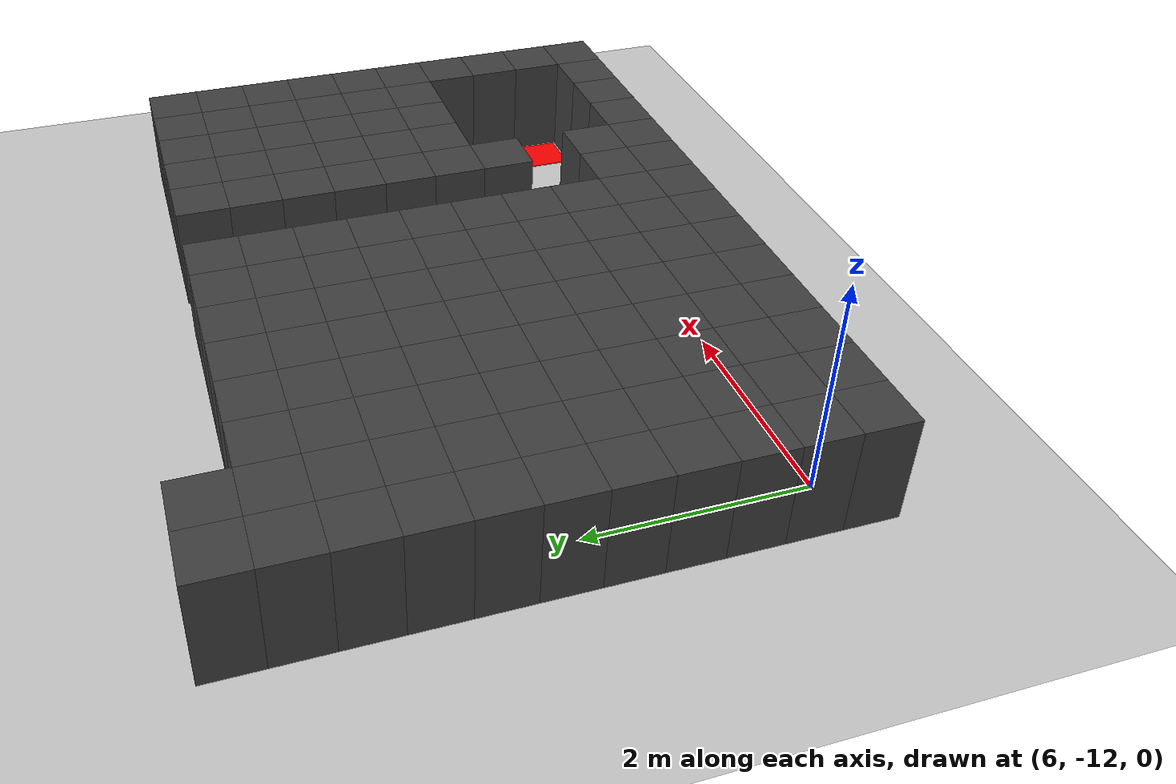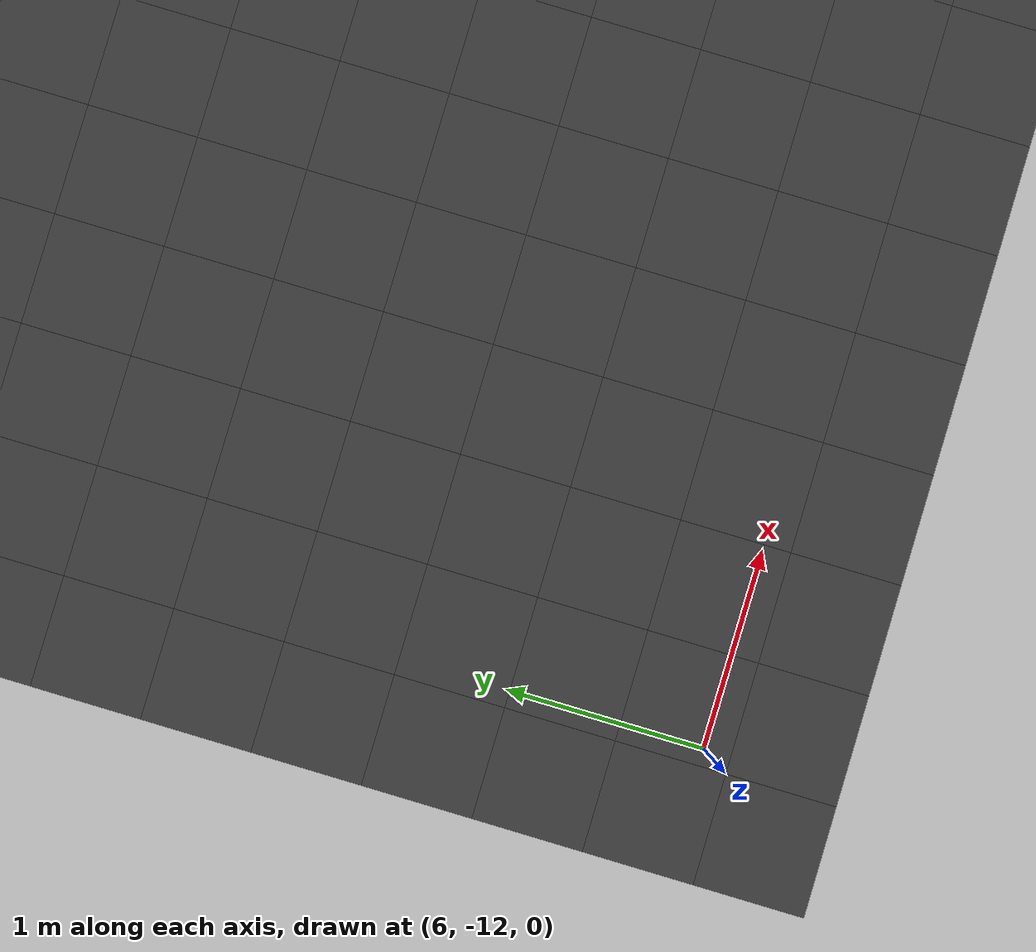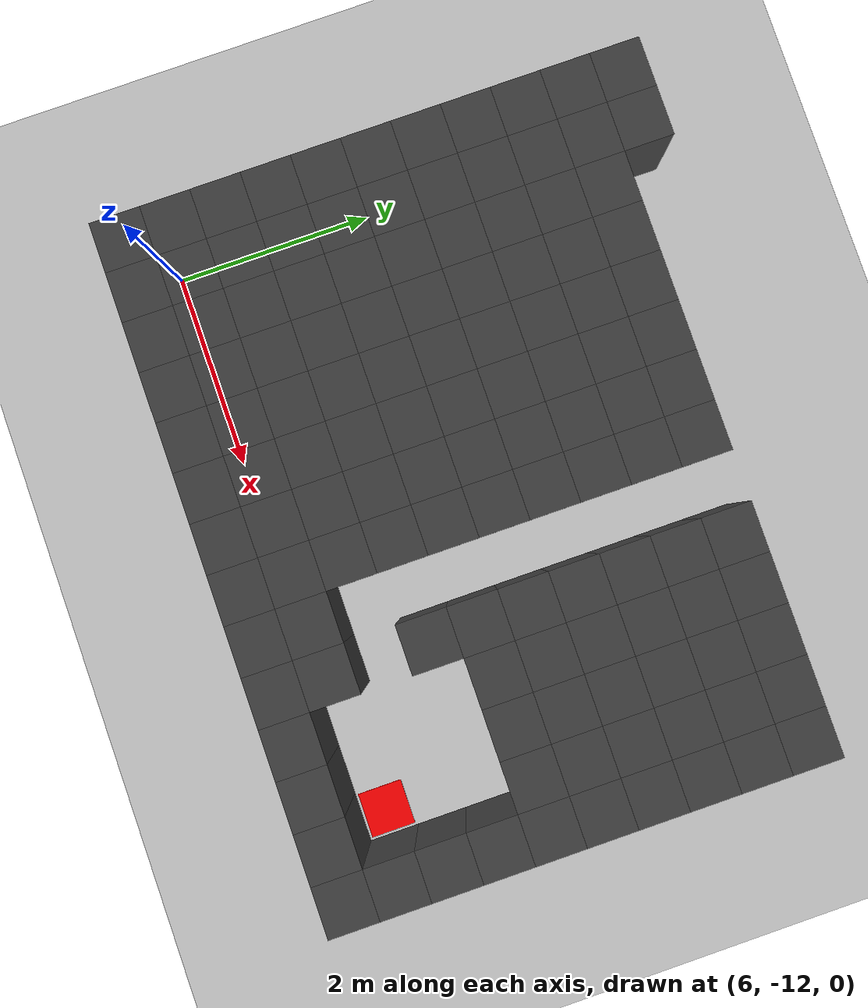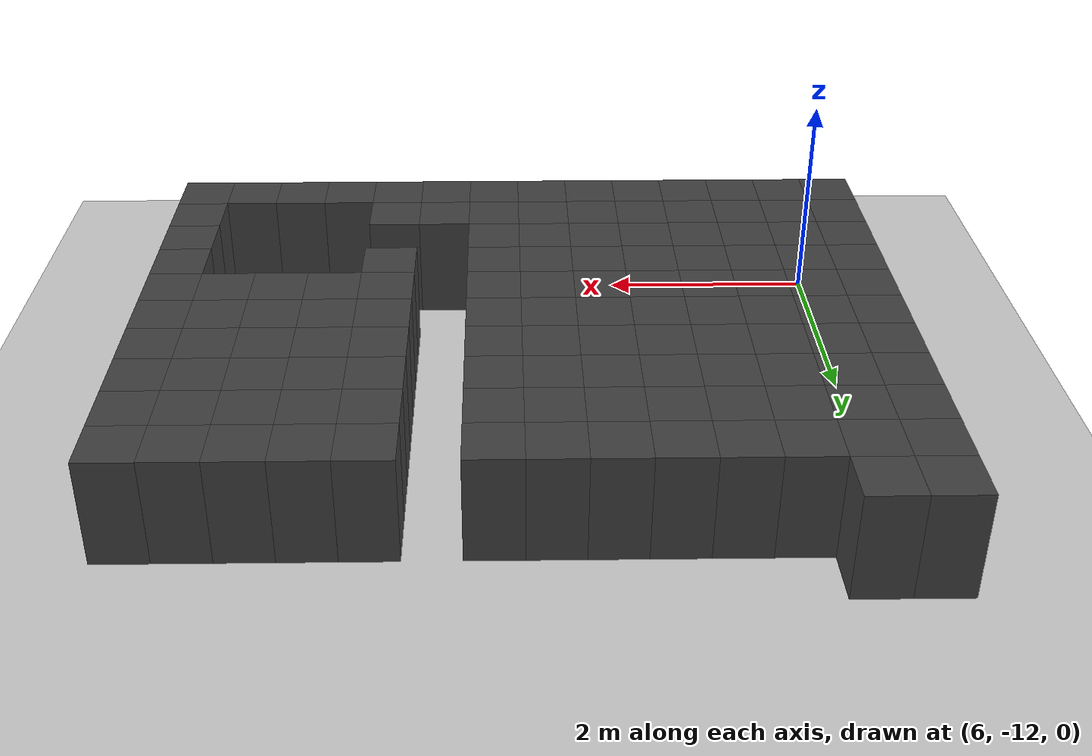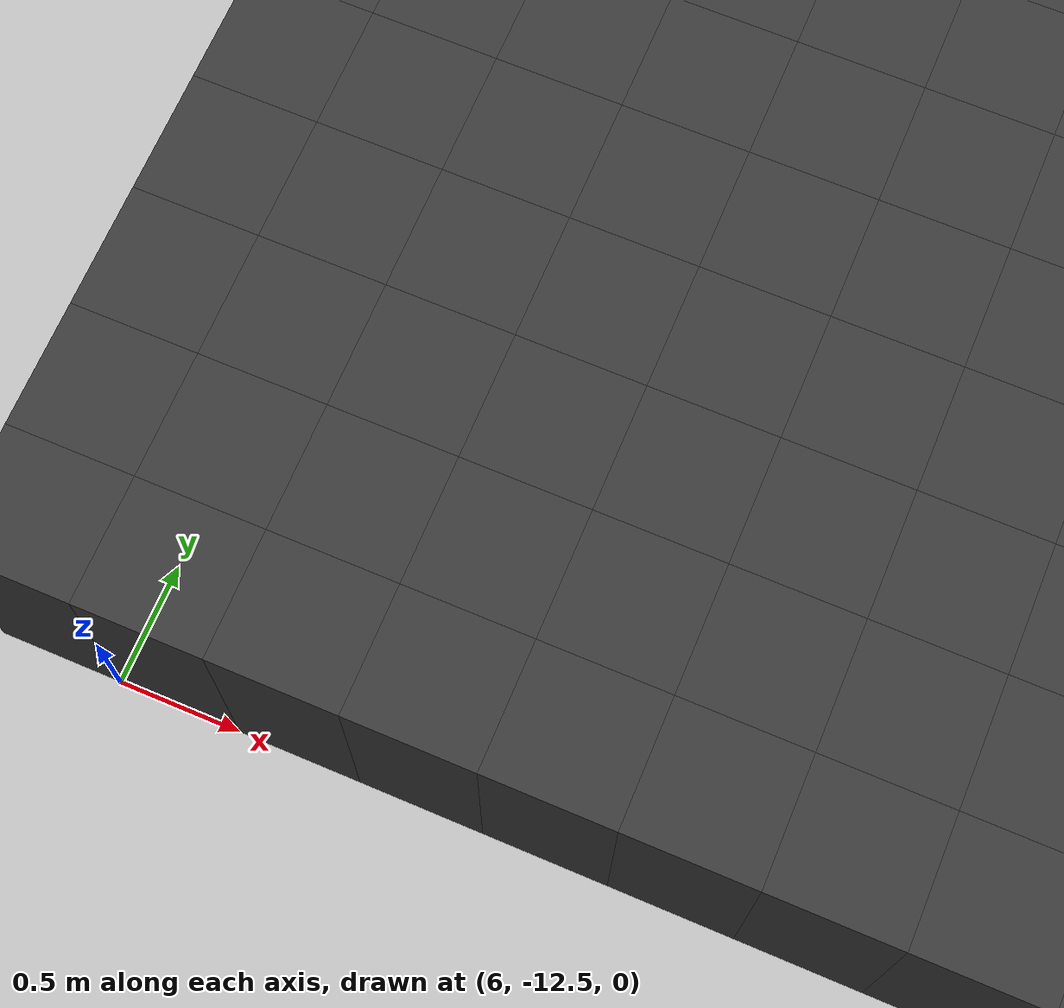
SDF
<sdf version="1.7">
 <world name="map_10764">
  <model name="ground_plane">
   <static>true</static>
   <link name="link">
    <collision name="collision">
     <geometry><plane><normal>0 0 1</normal><size>200 200</size></plane></geometry>
    </collision>
    <visual name="visual">
     <geometry><plane><normal>0 0 1</normal><size>200 200</size></plane></geometry>
     <material><ambient>0.8 0.8 0.8 1</ambient><diffuse>0.8 0.8 0.8 1</diffuse></material>
    </visual>
   </link>
  </model>
  <model name="maze_environment">
   <static>true</static>
   <link name="wall_1635">
    <pose>5.750 -7.250 0.500 0 0 0</pose>
    <collision name="col"><geometry><box><size>0.5 0.5 1.0</size></box></geometry></collision>
    <visual name="vis">
     <geometry><box><size>0.5 0.5 1.0</size></box></geometry>
     <material><ambient>0.15 0.15 0.15 1</ambient><diffuse>0.25 0.25 0.25 1</diffuse></material>
    </visual>
   </link>
   <link name="wall_1636">
    <pose>6.250 -7.250 0.500 0 0 0</pose>
    <collision name="col"><geometry><box><size>0.5 0.5 1.0</size></box></geometry></collision>
    <visual name="vis">
     <geometry><box><size>0.5 0.5 1.0</size></box></geometry>
     <material><ambient>0.15 0.15 0.15 1</ambient><diffuse>0.25 0.25 0.25 1</diffuse></material>
    </visual>
   </link>
   <link name="wall_1684">
    <pose>5.750 -7.750 0.500 0 0 0</pose>
    <collision name="col"><geometry><box><size>0.5 0.5 1.0</size></box></geometry></collision>
    <visual name="vis">
     <geometry><box><size>0.5 0.5 1.0</size></box></geometry>
     <material><ambient>0.15 0.15 0.15 1</ambient><diffuse>0.25 0.25 0.25 1</diffuse></material>
    </visual>
   </link>
   <link name="wall_1685">
    <pose>6.250 -7.750 0.500 0 0 0</pose>
    <collision name="col"><geometry><box><size>0.5 0.5 1.0</size></box></geometry></collision>
    <visual name="vis">
     <geometry><box><size>0.5 0.5 1.0</size></box></geometry>
     <material><ambient>0.15 0.15 0.15 1</ambient><diffuse>0.25 0.25 0.25 1</diffuse></material>
    </visual>
   </link>
   <link name="wall_1686">
    <pose>6.750 -7.750 0.500 0 0 0</pose>
    <collision name="col"><geometry><box><size>0.5 0.5 1.0</size></box></geometry></collision>
    <visual name="vis">
     <geometry><box><size>0.5 0.5 1.0</size></box></geometry>
     <material><ambient>0.15 0.15 0.15 1</ambient><diffuse>0.25 0.25 0.25 1</diffuse></material>
    </visual>
   </link>
   <link name="wall_1687">
    <pose>7.250 -7.750 0.500 0 0 0</pose>
    <collision name="col"><geometry><box><size>0.5 0.5 1.0</size></box></geometry></collision>
    <visual name="vis">
     <geometry><box><size>0.5 0.5 1.0</size></box></geometry>
     <material><ambient>0.15 0.15 0.15 1</ambient><diffuse>0.25 0.25 0.25 1</diffuse></material>
    </visual>
   </link>
   <link name="wall_1688">
    <pose>7.750 -7.750 0.500 0 0 0</pose>
    <collision name="col"><geometry><box><size>0.5 0.5 1.0</size></box></geometry></collision>
    <visual name="vis">
     <geometry><box><size>0.5 0.5 1.0</size></box></geometry>
     <material><ambient>0.15 0.15 0.15 1</ambient><diffuse>0.25 0.25 0.25 1</diffuse></material>
    </visual>
   </link>
   <link name="wall_1689">
    <pose>8.250 -7.750 0.500 0 0 0</pose>
    <collision name="col"><geometry><box><size>0.5 0.5 1.0</size></box></geometry></collision>
    <visual name="vis">
     <geometry><box><size>0.5 0.5 1.0</size></box></geometry>
     <material><ambient>0.15 0.15 0.15 1</ambient><diffuse>0.25 0.25 0.25 1</diffuse></material>
    </visual>
   </link>
   <link name="wall_1690">
    <pose>8.750 -7.750 0.500 0 0 0</pose>
    <collision name="col"><geometry><box><size>0.5 0.5 1.0</size></box></geometry></collision>
    <visual name="vis">
     <geometry><box><size>0.5 0.5 1.0</size></box></geometry>
     <material><ambient>0.15 0.15 0.15 1</ambient><diffuse>0.25 0.25 0.25 1</diffuse></material>
    </visual>
   </link>
   <link name="wall_1691">
    <pose>9.250 -7.750 0.500 0 0 0</pose>
    <collision name="col"><geometry><box><size>0.5 0.5 1.0</size></box></geometry></collision>
    <visual name="vis">
     <geometry><box><size>0.5 0.5 1.0</size></box></geometry>
     <material><ambient>0.15 0.15 0.15 1</ambient><diffuse>0.25 0.25 0.25 1</diffuse></material>
    </visual>
   </link>
   <link name="wall_1692">
    <pose>10.250 -7.750 0.500 0 0 0</pose>
    <collision name="col"><geometry><box><size>0.5 0.5 1.0</size></box></geometry></collision>
    <visual name="vis">
     <geometry><box><size>0.5 0.5 1.0</size></box></geometry>
     <material><ambient>0.15 0.15 0.15 1</ambient><diffuse>0.25 0.25 0.25 1</diffuse></material>
    </visual>
   </link>
   <link name="wall_1693">
    <pose>10.750 -7.750 0.500 0 0 0</pose>
    <collision name="col"><geometry><box><size>0.5 0.5 1.0</size></box></geometry></collision>
    <visual name="vis">
     <geometry><box><size>0.5 0.5 1.0</size></box></geometry>
     <material><ambient>0.15 0.15 0.15 1</ambient><diffuse>0.25 0.25 0.25 1</diffuse></material>
    </visual>
   </link>
   <link name="wall_1694">
    <pose>11.250 -7.750 0.500 0 0 0</pose>
    <collision name="col"><geometry><box><size>0.5 0.5 1.0</size></box></geometry></collision>
    <visual name="vis">
     <geometry><box><size>0.5 0.5 1.0</size></box></geometry>
     <material><ambient>0.15 0.15 0.15 1</ambient><diffuse>0.25 0.25 0.25 1</diffuse></material>
    </visual>
   </link>
   <link name="wall_1695">
    <pose>11.750 -7.750 0.500 0 0 0</pose>
    <collision name="col"><geometry><box><size>0.5 0.5 1.0</size></box></geometry></collision>
    <visual name="vis">
     <geometry><box><size>0.5 0.5 1.0</size></box></geometry>
     <material><ambient>0.15 0.15 0.15 1</ambient><diffuse>0.25 0.25 0.25 1</diffuse></material>
    </visual>
   </link>
   <link name="wall_1696">
    <pose>12.250 -7.750 0.500 0 0 0</pose>
    <collision name="col"><geometry><box><size>0.5 0.5 1.0</size></box></geometry></collision>
    <visual name="vis">
     <geometry><box><size>0.5 0.5 1.0</size></box></geometry>
     <material><ambient>0.15 0.15 0.15 1</ambient><diffuse>0.25 0.25 0.25 1</diffuse></material>
    </visual>
   </link>
   <link name="wall_1733">
    <pose>5.750 -8.250 0.500 0 0 0</pose>
    <collision name="col"><geometry><box><size>0.5 0.5 1.0</size></box></geometry></collision>
    <visual name="vis">
     <geometry><box><size>0.5 0.5 1.0</size></box></geometry>
     <material><ambient>0.15 0.15 0.15 1</ambient><diffuse>0.25 0.25 0.25 1</diffuse></material>
    </visual>
   </link>
   <link name="wall_1734">
    <pose>6.250 -8.250 0.500 0 0 0</pose>
    <collision name="col"><geometry><box><size>0.5 0.5 1.0</size></box></geometry></collision>
    <visual name="vis">
     <geometry><box><size>0.5 0.5 1.0</size></box></geometry>
     <material><ambient>0.15 0.15 0.15 1</ambient><diffuse>0.25 0.25 0.25 1</diffuse></material>
    </visual>
   </link>
   <link name="wall_1735">
    <pose>6.750 -8.250 0.500 0 0 0</pose>
    <collision name="col"><geometry><box><size>0.5 0.5 1.0</size></box></geometry></collision>
    <visual name="vis">
     <geometry><box><size>0.5 0.5 1.0</size></box></geometry>
     <material><ambient>0.15 0.15 0.15 1</ambient><diffuse>0.25 0.25 0.25 1</diffuse></material>
    </visual>
   </link>
   <link name="wall_1736">
    <pose>7.250 -8.250 0.500 0 0 0</pose>
    <collision name="col"><geometry><box><size>0.5 0.5 1.0</size></box></geometry></collision>
    <visual name="vis">
     <geometry><box><size>0.5 0.5 1.0</size></box></geometry>
     <material><ambient>0.15 0.15 0.15 1</ambient><diffuse>0.25 0.25 0.25 1</diffuse></material>
    </visual>
   </link>
   <link name="wall_1737">
    <pose>7.750 -8.250 0.500 0 0 0</pose>
    <collision name="col"><geometry><box><size>0.5 0.5 1.0</size></box></geometry></collision>
    <visual name="vis">
     <geometry><box><size>0.5 0.5 1.0</size></box></geometry>
     <material><ambient>0.15 0.15 0.15 1</ambient><diffuse>0.25 0.25 0.25 1</diffuse></material>
    </visual>
   </link>
   <link name="wall_1738">
    <pose>8.250 -8.250 0.500 0 0 0</pose>
    <collision name="col"><geometry><box><size>0.5 0.5 1.0</size></box></geometry></collision>
    <visual name="vis">
     <geometry><box><size>0.5 0.5 1.0</size></box></geometry>
     <material><ambient>0.15 0.15 0.15 1</ambient><diffuse>0.25 0.25 0.25 1</diffuse></material>
    </visual>
   </link>
   <link name="wall_1739">
    <pose>8.750 -8.250 0.500 0 0 0</pose>
    <collision name="col"><geometry><box><size>0.5 0.5 1.0</size></box></geometry></collision>
    <visual name="vis">
     <geometry><box><size>0.5 0.5 1.0</size></box></geometry>
     <material><ambient>0.15 0.15 0.15 1</ambient><diffuse>0.25 0.25 0.25 1</diffuse></material>
    </visual>
   </link>
   <link name="wall_1740">
    <pose>9.250 -8.250 0.500 0 0 0</pose>
    <collision name="col"><geometry><box><size>0.5 0.5 1.0</size></box></geometry></collision>
    <visual name="vis">
     <geometry><box><size>0.5 0.5 1.0</size></box></geometry>
     <material><ambient>0.15 0.15 0.15 1</ambient><diffuse>0.25 0.25 0.25 1</diffuse></material>
    </visual>
   </link>
   <link name="wall_1741">
    <pose>10.250 -8.250 0.500 0 0 0</pose>
    <collision name="col"><geometry><box><size>0.5 0.5 1.0</size></box></geometry></collision>
    <visual name="vis">
     <geometry><box><size>0.5 0.5 1.0</size></box></geometry>
     <material><ambient>0.15 0.15 0.15 1</ambient><diffuse>0.25 0.25 0.25 1</diffuse></material>
    </visual>
   </link>
   <link name="wall_1742">
    <pose>10.750 -8.250 0.500 0 0 0</pose>
    <collision name="col"><geometry><box><size>0.5 0.5 1.0</size></box></geometry></collision>
    <visual name="vis">
     <geometry><box><size>0.5 0.5 1.0</size></box></geometry>
     <material><ambient>0.15 0.15 0.15 1</ambient><diffuse>0.25 0.25 0.25 1</diffuse></material>
    </visual>
   </link>
   <link name="wall_1743">
    <pose>11.250 -8.250 0.500 0 0 0</pose>
    <collision name="col"><geometry><box><size>0.5 0.5 1.0</size></box></geometry></collision>
    <visual name="vis">
     <geometry><box><size>0.5 0.5 1.0</size></box></geometry>
     <material><ambient>0.15 0.15 0.15 1</ambient><diffuse>0.25 0.25 0.25 1</diffuse></material>
    </visual>
   </link>
   <link name="wall_1744">
    <pose>11.750 -8.250 0.500 0 0 0</pose>
    <collision name="col"><geometry><box><size>0.5 0.5 1.0</size></box></geometry></collision>
    <visual name="vis">
     <geometry><box><size>0.5 0.5 1.0</size></box></geometry>
     <material><ambient>0.15 0.15 0.15 1</ambient><diffuse>0.25 0.25 0.25 1</diffuse></material>
    </visual>
   </link>
   <link name="wall_1745">
    <pose>12.250 -8.250 0.500 0 0 0</pose>
    <collision name="col"><geometry><box><size>0.5 0.5 1.0</size></box></geometry></collision>
    <visual name="vis">
     <geometry><box><size>0.5 0.5 1.0</size></box></geometry>
     <material><ambient>0.15 0.15 0.15 1</ambient><diffuse>0.25 0.25 0.25 1</diffuse></material>
    </visual>
   </link>
   <link name="wall_1782">
    <pose>5.750 -8.750 0.500 0 0 0</pose>
    <collision name="col"><geometry><box><size>0.5 0.5 1.0</size></box></geometry></collision>
    <visual name="vis">
     <geometry><box><size>0.5 0.5 1.0</size></box></geometry>
     <material><ambient>0.15 0.15 0.15 1</ambient><diffuse>0.25 0.25 0.25 1</diffuse></material>
    </visual>
   </link>
   <link name="wall_1783">
    <pose>6.250 -8.750 0.500 0 0 0</pose>
    <collision name="col"><geometry><box><size>0.5 0.5 1.0</size></box></geometry></collision>
    <visual name="vis">
     <geometry><box><size>0.5 0.5 1.0</size></box></geometry>
     <material><ambient>0.15 0.15 0.15 1</ambient><diffuse>0.25 0.25 0.25 1</diffuse></material>
    </visual>
   </link>
   <link name="wall_1784">
    <pose>6.750 -8.750 0.500 0 0 0</pose>
    <collision name="col"><geometry><box><size>0.5 0.5 1.0</size></box></geometry></collision>
    <visual name="vis">
     <geometry><box><size>0.5 0.5 1.0</size></box></geometry>
     <material><ambient>0.15 0.15 0.15 1</ambient><diffuse>0.25 0.25 0.25 1</diffuse></material>
    </visual>
   </link>
   <link name="wall_1785">
    <pose>7.250 -8.750 0.500 0 0 0</pose>
    <collision name="col"><geometry><box><size>0.5 0.5 1.0</size></box></geometry></collision>
    <visual name="vis">
     <geometry><box><size>0.5 0.5 1.0</size></box></geometry>
     <material><ambient>0.15 0.15 0.15 1</ambient><diffuse>0.25 0.25 0.25 1</diffuse></material>
    </visual>
   </link>
   <link name="wall_1786">
    <pose>7.750 -8.750 0.500 0 0 0</pose>
    <collision name="col"><geometry><box><size>0.5 0.5 1.0</size></box></geometry></collision>
    <visual name="vis">
     <geometry><box><size>0.5 0.5 1.0</size></box></geometry>
     <material><ambient>0.15 0.15 0.15 1</ambient><diffuse>0.25 0.25 0.25 1</diffuse></material>
    </visual>
   </link>
   <link name="wall_1787">
    <pose>8.250 -8.750 0.500 0 0 0</pose>
    <collision name="col"><geometry><box><size>0.5 0.5 1.0</size></box></geometry></collision>
    <visual name="vis">
     <geometry><box><size>0.5 0.5 1.0</size></box></geometry>
     <material><ambient>0.15 0.15 0.15 1</ambient><diffuse>0.25 0.25 0.25 1</diffuse></material>
    </visual>
   </link>
   <link name="wall_1788">
    <pose>8.750 -8.750 0.500 0 0 0</pose>
    <collision name="col"><geometry><box><size>0.5 0.5 1.0</size></box></geometry></collision>
    <visual name="vis">
     <geometry><box><size>0.5 0.5 1.0</size></box></geometry>
     <material><ambient>0.15 0.15 0.15 1</ambient><diffuse>0.25 0.25 0.25 1</diffuse></material>
    </visual>
   </link>
   <link name="wall_1789">
    <pose>9.250 -8.750 0.500 0 0 0</pose>
    <collision name="col"><geometry><box><size>0.5 0.5 1.0</size></box></geometry></collision>
    <visual name="vis">
     <geometry><box><size>0.5 0.5 1.0</size></box></geometry>
     <material><ambient>0.15 0.15 0.15 1</ambient><diffuse>0.25 0.25 0.25 1</diffuse></material>
    </visual>
   </link>
   <link name="wall_1790">
    <pose>10.250 -8.750 0.500 0 0 0</pose>
    <collision name="col"><geometry><box><size>0.5 0.5 1.0</size></box></geometry></collision>
    <visual name="vis">
     <geometry><box><size>0.5 0.5 1.0</size></box></geometry>
     <material><ambient>0.15 0.15 0.15 1</ambient><diffuse>0.25 0.25 0.25 1</diffuse></material>
    </visual>
   </link>
   <link name="wall_1791">
    <pose>10.750 -8.750 0.500 0 0 0</pose>
    <collision name="col"><geometry><box><size>0.5 0.5 1.0</size></box></geometry></collision>
    <visual name="vis">
     <geometry><box><size>0.5 0.5 1.0</size></box></geometry>
     <material><ambient>0.15 0.15 0.15 1</ambient><diffuse>0.25 0.25 0.25 1</diffuse></material>
    </visual>
   </link>
   <link name="wall_1792">
    <pose>11.250 -8.750 0.500 0 0 0</pose>
    <collision name="col"><geometry><box><size>0.5 0.5 1.0</size></box></geometry></collision>
    <visual name="vis">
     <geometry><box><size>0.5 0.5 1.0</size></box></geometry>
     <material><ambient>0.15 0.15 0.15 1</ambient><diffuse>0.25 0.25 0.25 1</diffuse></material>
    </visual>
   </link>
   <link name="wall_1793">
    <pose>11.750 -8.750 0.500 0 0 0</pose>
    <collision name="col"><geometry><box><size>0.5 0.5 1.0</size></box></geometry></collision>
    <visual name="vis">
     <geometry><box><size>0.5 0.5 1.0</size></box></geometry>
     <material><ambient>0.15 0.15 0.15 1</ambient><diffuse>0.25 0.25 0.25 1</diffuse></material>
    </visual>
   </link>
   <link name="wall_1794">
    <pose>12.250 -8.750 0.500 0 0 0</pose>
    <collision name="col"><geometry><box><size>0.5 0.5 1.0</size></box></geometry></collision>
    <visual name="vis">
     <geometry><box><size>0.5 0.5 1.0</size></box></geometry>
     <material><ambient>0.15 0.15 0.15 1</ambient><diffuse>0.25 0.25 0.25 1</diffuse></material>
    </visual>
   </link>
   <link name="wall_1831">
    <pose>5.750 -9.250 0.500 0 0 0</pose>
    <collision name="col"><geometry><box><size>0.5 0.5 1.0</size></box></geometry></collision>
    <visual name="vis">
     <geometry><box><size>0.5 0.5 1.0</size></box></geometry>
     <material><ambient>0.15 0.15 0.15 1</ambient><diffuse>0.25 0.25 0.25 1</diffuse></material>
    </visual>
   </link>
   <link name="wall_1832">
    <pose>6.250 -9.250 0.500 0 0 0</pose>
    <collision name="col"><geometry><box><size>0.5 0.5 1.0</size></box></geometry></collision>
    <visual name="vis">
     <geometry><box><size>0.5 0.5 1.0</size></box></geometry>
     <material><ambient>0.15 0.15 0.15 1</ambient><diffuse>0.25 0.25 0.25 1</diffuse></material>
    </visual>
   </link>
   <link name="wall_1833">
    <pose>6.750 -9.250 0.500 0 0 0</pose>
    <collision name="col"><geometry><box><size>0.5 0.5 1.0</size></box></geometry></collision>
    <visual name="vis">
     <geometry><box><size>0.5 0.5 1.0</size></box></geometry>
     <material><ambient>0.15 0.15 0.15 1</ambient><diffuse>0.25 0.25 0.25 1</diffuse></material>
    </visual>
   </link>
   <link name="wall_1834">
    <pose>7.250 -9.250 0.500 0 0 0</pose>
    <collision name="col"><geometry><box><size>0.5 0.5 1.0</size></box></geometry></collision>
    <visual name="vis">
     <geometry><box><size>0.5 0.5 1.0</size></box></geometry>
     <material><ambient>0.15 0.15 0.15 1</ambient><diffuse>0.25 0.25 0.25 1</diffuse></material>
    </visual>
   </link>
   <link name="wall_1835">
    <pose>7.750 -9.250 0.500 0 0 0</pose>
    <collision name="col"><geometry><box><size>0.5 0.5 1.0</size></box></geometry></collision>
    <visual name="vis">
     <geometry><box><size>0.5 0.5 1.0</size></box></geometry>
     <material><ambient>0.15 0.15 0.15 1</ambient><diffuse>0.25 0.25 0.25 1</diffuse></material>
    </visual>
   </link>
   <link name="wall_1836">
    <pose>8.250 -9.250 0.500 0 0 0</pose>
    <collision name="col"><geometry><box><size>0.5 0.5 1.0</size></box></geometry></collision>
    <visual name="vis">
     <geometry><box><size>0.5 0.5 1.0</size></box></geometry>
     <material><ambient>0.15 0.15 0.15 1</ambient><diffuse>0.25 0.25 0.25 1</diffuse></material>
    </visual>
   </link>
   <link name="wall_1837">
    <pose>8.750 -9.250 0.500 0 0 0</pose>
    <collision name="col"><geometry><box><size>0.5 0.5 1.0</size></box></geometry></collision>
    <visual name="vis">
     <geometry><box><size>0.5 0.5 1.0</size></box></geometry>
     <material><ambient>0.15 0.15 0.15 1</ambient><diffuse>0.25 0.25 0.25 1</diffuse></material>
    </visual>
   </link>
   <link name="wall_1838">
    <pose>9.250 -9.250 0.500 0 0 0</pose>
    <collision name="col"><geometry><box><size>0.5 0.5 1.0</size></box></geometry></collision>
    <visual name="vis">
     <geometry><box><size>0.5 0.5 1.0</size></box></geometry>
     <material><ambient>0.15 0.15 0.15 1</ambient><diffuse>0.25 0.25 0.25 1</diffuse></material>
    </visual>
   </link>
   <link name="wall_1839">
    <pose>10.250 -9.250 0.500 0 0 0</pose>
    <collision name="col"><geometry><box><size>0.5 0.5 1.0</size></box></geometry></collision>
    <visual name="vis">
     <geometry><box><size>0.5 0.5 1.0</size></box></geometry>
     <material><ambient>0.15 0.15 0.15 1</ambient><diffuse>0.25 0.25 0.25 1</diffuse></material>
    </visual>
   </link>
   <link name="wall_1840">
    <pose>10.750 -9.250 0.500 0 0 0</pose>
    <collision name="col"><geometry><box><size>0.5 0.5 1.0</size></box></geometry></collision>
    <visual name="vis">
     <geometry><box><size>0.5 0.5 1.0</size></box></geometry>
     <material><ambient>0.15 0.15 0.15 1</ambient><diffuse>0.25 0.25 0.25 1</diffuse></material>
    </visual>
   </link>
   <link name="wall_1841">
    <pose>11.250 -9.250 0.500 0 0 0</pose>
    <collision name="col"><geometry><box><size>0.5 0.5 1.0</size></box></geometry></collision>
    <visual name="vis">
     <geometry><box><size>0.5 0.5 1.0</size></box></geometry>
     <material><ambient>0.15 0.15 0.15 1</ambient><diffuse>0.25 0.25 0.25 1</diffuse></material>
    </visual>
   </link>
   <link name="wall_1842">
    <pose>11.750 -9.250 0.500 0 0 0</pose>
    <collision name="col"><geometry><box><size>0.5 0.5 1.0</size></box></geometry></collision>
    <visual name="vis">
     <geometry><box><size>0.5 0.5 1.0</size></box></geometry>
     <material><ambient>0.15 0.15 0.15 1</ambient><diffuse>0.25 0.25 0.25 1</diffuse></material>
    </visual>
   </link>
   <link name="wall_1843">
    <pose>12.250 -9.250 0.500 0 0 0</pose>
    <collision name="col"><geometry><box><size>0.5 0.5 1.0</size></box></geometry></collision>
    <visual name="vis">
     <geometry><box><size>0.5 0.5 1.0</size></box></geometry>
     <material><ambient>0.15 0.15 0.15 1</ambient><diffuse>0.25 0.25 0.25 1</diffuse></material>
    </visual>
   </link>
   <link name="wall_1880">
    <pose>5.750 -9.750 0.500 0 0 0</pose>
    <collision name="col"><geometry><box><size>0.5 0.5 1.0</size></box></geometry></collision>
    <visual name="vis">
     <geometry><box><size>0.5 0.5 1.0</size></box></geometry>
     <material><ambient>0.15 0.15 0.15 1</ambient><diffuse>0.25 0.25 0.25 1</diffuse></material>
    </visual>
   </link>
   <link name="wall_1881">
    <pose>6.250 -9.750 0.500 0 0 0</pose>
    <collision name="col"><geometry><box><size>0.5 0.5 1.0</size></box></geometry></collision>
    <visual name="vis">
     <geometry><box><size>0.5 0.5 1.0</size></box></geometry>
     <material><ambient>0.15 0.15 0.15 1</ambient><diffuse>0.25 0.25 0.25 1</diffuse></material>
    </visual>
   </link>
   <link name="wall_1882">
    <pose>6.750 -9.750 0.500 0 0 0</pose>
    <collision name="col"><geometry><box><size>0.5 0.5 1.0</size></box></geometry></collision>
    <visual name="vis">
     <geometry><box><size>0.5 0.5 1.0</size></box></geometry>
     <material><ambient>0.15 0.15 0.15 1</ambient><diffuse>0.25 0.25 0.25 1</diffuse></material>
    </visual>
   </link>
   <link name="wall_1883">
    <pose>7.250 -9.750 0.500 0 0 0</pose>
    <collision name="col"><geometry><box><size>0.5 0.5 1.0</size></box></geometry></collision>
    <visual name="vis">
     <geometry><box><size>0.5 0.5 1.0</size></box></geometry>
     <material><ambient>0.15 0.15 0.15 1</ambient><diffuse>0.25 0.25 0.25 1</diffuse></material>
    </visual>
   </link>
   <link name="wall_1884">
    <pose>7.750 -9.750 0.500 0 0 0</pose>
    <collision name="col"><geometry><box><size>0.5 0.5 1.0</size></box></geometry></collision>
    <visual name="vis">
     <geometry><box><size>0.5 0.5 1.0</size></box></geometry>
     <material><ambient>0.15 0.15 0.15 1</ambient><diffuse>0.25 0.25 0.25 1</diffuse></material>
    </visual>
   </link>
   <link name="wall_1885">
    <pose>8.250 -9.750 0.500 0 0 0</pose>
    <collision name="col"><geometry><box><size>0.5 0.5 1.0</size></box></geometry></collision>
    <visual name="vis">
     <geometry><box><size>0.5 0.5 1.0</size></box></geometry>
     <material><ambient>0.15 0.15 0.15 1</ambient><diffuse>0.25 0.25 0.25 1</diffuse></material>
    </visual>
   </link>
   <link name="wall_1886">
    <pose>8.750 -9.750 0.500 0 0 0</pose>
    <collision name="col"><geometry><box><size>0.5 0.5 1.0</size></box></geometry></collision>
    <visual name="vis">
     <geometry><box><size>0.5 0.5 1.0</size></box></geometry>
     <material><ambient>0.15 0.15 0.15 1</ambient><diffuse>0.25 0.25 0.25 1</diffuse></material>
    </visual>
   </link>
   <link name="wall_1887">
    <pose>9.250 -9.750 0.500 0 0 0</pose>
    <collision name="col"><geometry><box><size>0.5 0.5 1.0</size></box></geometry></collision>
    <visual name="vis">
     <geometry><box><size>0.5 0.5 1.0</size></box></geometry>
     <material><ambient>0.15 0.15 0.15 1</ambient><diffuse>0.25 0.25 0.25 1</diffuse></material>
    </visual>
   </link>
   <link name="wall_1888">
    <pose>10.250 -9.750 0.500 0 0 0</pose>
    <collision name="col"><geometry><box><size>0.5 0.5 1.0</size></box></geometry></collision>
    <visual name="vis">
     <geometry><box><size>0.5 0.5 1.0</size></box></geometry>
     <material><ambient>0.15 0.15 0.15 1</ambient><diffuse>0.25 0.25 0.25 1</diffuse></material>
    </visual>
   </link>
   <link name="wall_1889">
    <pose>10.750 -9.750 0.500 0 0 0</pose>
    <collision name="col"><geometry><box><size>0.5 0.5 1.0</size></box></geometry></collision>
    <visual name="vis">
     <geometry><box><size>0.5 0.5 1.0</size></box></geometry>
     <material><ambient>0.15 0.15 0.15 1</ambient><diffuse>0.25 0.25 0.25 1</diffuse></material>
    </visual>
   </link>
   <link name="wall_1890">
    <pose>11.250 -9.750 0.500 0 0 0</pose>
    <collision name="col"><geometry><box><size>0.5 0.5 1.0</size></box></geometry></collision>
    <visual name="vis">
     <geometry><box><size>0.5 0.5 1.0</size></box></geometry>
     <material><ambient>0.15 0.15 0.15 1</ambient><diffuse>0.25 0.25 0.25 1</diffuse></material>
    </visual>
   </link>
   <link name="wall_1891">
    <pose>11.750 -9.750 0.500 0 0 0</pose>
    <collision name="col"><geometry><box><size>0.5 0.5 1.0</size></box></geometry></collision>
    <visual name="vis">
     <geometry><box><size>0.5 0.5 1.0</size></box></geometry>
     <material><ambient>0.15 0.15 0.15 1</ambient><diffuse>0.25 0.25 0.25 1</diffuse></material>
    </visual>
   </link>
   <link name="wall_1892">
    <pose>12.250 -9.750 0.500 0 0 0</pose>
    <collision name="col"><geometry><box><size>0.5 0.5 1.0</size></box></geometry></collision>
    <visual name="vis">
     <geometry><box><size>0.5 0.5 1.0</size></box></geometry>
     <material><ambient>0.15 0.15 0.15 1</ambient><diffuse>0.25 0.25 0.25 1</diffuse></material>
    </visual>
   </link>
   <link name="wall_1929">
    <pose>5.750 -10.250 0.500 0 0 0</pose>
    <collision name="col"><geometry><box><size>0.5 0.5 1.0</size></box></geometry></collision>
    <visual name="vis">
     <geometry><box><size>0.5 0.5 1.0</size></box></geometry>
     <material><ambient>0.15 0.15 0.15 1</ambient><diffuse>0.25 0.25 0.25 1</diffuse></material>
    </visual>
   </link>
   <link name="wall_1930">
    <pose>6.250 -10.250 0.500 0 0 0</pose>
    <collision name="col"><geometry><box><size>0.5 0.5 1.0</size></box></geometry></collision>
    <visual name="vis">
     <geometry><box><size>0.5 0.5 1.0</size></box></geometry>
     <material><ambient>0.15 0.15 0.15 1</ambient><diffuse>0.25 0.25 0.25 1</diffuse></material>
    </visual>
   </link>
   <link name="wall_1931">
    <pose>6.750 -10.250 0.500 0 0 0</pose>
    <collision name="col"><geometry><box><size>0.5 0.5 1.0</size></box></geometry></collision>
    <visual name="vis">
     <geometry><box><size>0.5 0.5 1.0</size></box></geometry>
     <material><ambient>0.15 0.15 0.15 1</ambient><diffuse>0.25 0.25 0.25 1</diffuse></material>
    </visual>
   </link>
   <link name="wall_1932">
    <pose>7.250 -10.250 0.500 0 0 0</pose>
    <collision name="col"><geometry><box><size>0.5 0.5 1.0</size></box></geometry></collision>
    <visual name="vis">
     <geometry><box><size>0.5 0.5 1.0</size></box></geometry>
     <material><ambient>0.15 0.15 0.15 1</ambient><diffuse>0.25 0.25 0.25 1</diffuse></material>
    </visual>
   </link>
   <link name="wall_1933">
    <pose>7.750 -10.250 0.500 0 0 0</pose>
    <collision name="col"><geometry><box><size>0.5 0.5 1.0</size></box></geometry></collision>
    <visual name="vis">
     <geometry><box><size>0.5 0.5 1.0</size></box></geometry>
     <material><ambient>0.15 0.15 0.15 1</ambient><diffuse>0.25 0.25 0.25 1</diffuse></material>
    </visual>
   </link>
   <link name="wall_1934">
    <pose>8.250 -10.250 0.500 0 0 0</pose>
    <collision name="col"><geometry><box><size>0.5 0.5 1.0</size></box></geometry></collision>
    <visual name="vis">
     <geometry><box><size>0.5 0.5 1.0</size></box></geometry>
     <material><ambient>0.15 0.15 0.15 1</ambient><diffuse>0.25 0.25 0.25 1</diffuse></material>
    </visual>
   </link>
   <link name="wall_1935">
    <pose>8.750 -10.250 0.500 0 0 0</pose>
    <collision name="col"><geometry><box><size>0.5 0.5 1.0</size></box></geometry></collision>
    <visual name="vis">
     <geometry><box><size>0.5 0.5 1.0</size></box></geometry>
     <material><ambient>0.15 0.15 0.15 1</ambient><diffuse>0.25 0.25 0.25 1</diffuse></material>
    </visual>
   </link>
   <link name="wall_1936">
    <pose>9.250 -10.250 0.500 0 0 0</pose>
    <collision name="col"><geometry><box><size>0.5 0.5 1.0</size></box></geometry></collision>
    <visual name="vis">
     <geometry><box><size>0.5 0.5 1.0</size></box></geometry>
     <material><ambient>0.15 0.15 0.15 1</ambient><diffuse>0.25 0.25 0.25 1</diffuse></material>
    </visual>
   </link>
   <link name="wall_1937">
    <pose>10.250 -10.250 0.500 0 0 0</pose>
    <collision name="col"><geometry><box><size>0.5 0.5 1.0</size></box></geometry></collision>
    <visual name="vis">
     <geometry><box><size>0.5 0.5 1.0</size></box></geometry>
     <material><ambient>0.15 0.15 0.15 1</ambient><diffuse>0.25 0.25 0.25 1</diffuse></material>
    </visual>
   </link>
   <link name="wall_1938">
    <pose>10.750 -10.250 0.500 0 0 0</pose>
    <collision name="col"><geometry><box><size>0.5 0.5 1.0</size></box></geometry></collision>
    <visual name="vis">
     <geometry><box><size>0.5 0.5 1.0</size></box></geometry>
     <material><ambient>0.15 0.15 0.15 1</ambient><diffuse>0.25 0.25 0.25 1</diffuse></material>
    </visual>
   </link>
   <link name="wall_1939">
    <pose>11.250 -10.250 0.500 0 0 0</pose>
    <collision name="col"><geometry><box><size>0.5 0.5 1.0</size></box></geometry></collision>
    <visual name="vis">
     <geometry><box><size>0.5 0.5 1.0</size></box></geometry>
     <material><ambient>0.15 0.15 0.15 1</ambient><diffuse>0.25 0.25 0.25 1</diffuse></material>
    </visual>
   </link>
   <link name="wall_1940">
    <pose>11.750 -10.250 0.500 0 0 0</pose>
    <collision name="col"><geometry><box><size>0.5 0.5 1.0</size></box></geometry></collision>
    <visual name="vis">
     <geometry><box><size>0.5 0.5 1.0</size></box></geometry>
     <material><ambient>0.15 0.15 0.15 1</ambient><diffuse>0.25 0.25 0.25 1</diffuse></material>
    </visual>
   </link>
   <link name="wall_1941">
    <pose>12.250 -10.250 0.500 0 0 0</pose>
    <collision name="col"><geometry><box><size>0.5 0.5 1.0</size></box></geometry></collision>
    <visual name="vis">
     <geometry><box><size>0.5 0.5 1.0</size></box></geometry>
     <material><ambient>0.15 0.15 0.15 1</ambient><diffuse>0.25 0.25 0.25 1</diffuse></material>
    </visual>
   </link>
   <link name="wall_1978">
    <pose>5.750 -10.750 0.500 0 0 0</pose>
    <collision name="col"><geometry><box><size>0.5 0.5 1.0</size></box></geometry></collision>
    <visual name="vis">
     <geometry><box><size>0.5 0.5 1.0</size></box></geometry>
     <material><ambient>0.15 0.15 0.15 1</ambient><diffuse>0.25 0.25 0.25 1</diffuse></material>
    </visual>
   </link>
   <link name="wall_1979">
    <pose>6.250 -10.750 0.500 0 0 0</pose>
    <collision name="col"><geometry><box><size>0.5 0.5 1.0</size></box></geometry></collision>
    <visual name="vis">
     <geometry><box><size>0.5 0.5 1.0</size></box></geometry>
     <material><ambient>0.15 0.15 0.15 1</ambient><diffuse>0.25 0.25 0.25 1</diffuse></material>
    </visual>
   </link>
   <link name="wall_1980">
    <pose>6.750 -10.750 0.500 0 0 0</pose>
    <collision name="col"><geometry><box><size>0.5 0.5 1.0</size></box></geometry></collision>
    <visual name="vis">
     <geometry><box><size>0.5 0.5 1.0</size></box></geometry>
     <material><ambient>0.15 0.15 0.15 1</ambient><diffuse>0.25 0.25 0.25 1</diffuse></material>
    </visual>
   </link>
   <link name="wall_1981">
    <pose>7.250 -10.750 0.500 0 0 0</pose>
    <collision name="col"><geometry><box><size>0.5 0.5 1.0</size></box></geometry></collision>
    <visual name="vis">
     <geometry><box><size>0.5 0.5 1.0</size></box></geometry>
     <material><ambient>0.15 0.15 0.15 1</ambient><diffuse>0.25 0.25 0.25 1</diffuse></material>
    </visual>
   </link>
   <link name="wall_1982">
    <pose>7.750 -10.750 0.500 0 0 0</pose>
    <collision name="col"><geometry><box><size>0.5 0.5 1.0</size></box></geometry></collision>
    <visual name="vis">
     <geometry><box><size>0.5 0.5 1.0</size></box></geometry>
     <material><ambient>0.15 0.15 0.15 1</ambient><diffuse>0.25 0.25 0.25 1</diffuse></material>
    </visual>
   </link>
   <link name="wall_1983">
    <pose>8.250 -10.750 0.500 0 0 0</pose>
    <collision name="col"><geometry><box><size>0.5 0.5 1.0</size></box></geometry></collision>
    <visual name="vis">
     <geometry><box><size>0.5 0.5 1.0</size></box></geometry>
     <material><ambient>0.15 0.15 0.15 1</ambient><diffuse>0.25 0.25 0.25 1</diffuse></material>
    </visual>
   </link>
   <link name="wall_1984">
    <pose>8.750 -10.750 0.500 0 0 0</pose>
    <collision name="col"><geometry><box><size>0.5 0.5 1.0</size></box></geometry></collision>
    <visual name="vis">
     <geometry><box><size>0.5 0.5 1.0</size></box></geometry>
     <material><ambient>0.15 0.15 0.15 1</ambient><diffuse>0.25 0.25 0.25 1</diffuse></material>
    </visual>
   </link>
   <link name="wall_1985">
    <pose>9.250 -10.750 0.500 0 0 0</pose>
    <collision name="col"><geometry><box><size>0.5 0.5 1.0</size></box></geometry></collision>
    <visual name="vis">
     <geometry><box><size>0.5 0.5 1.0</size></box></geometry>
     <material><ambient>0.15 0.15 0.15 1</ambient><diffuse>0.25 0.25 0.25 1</diffuse></material>
    </visual>
   </link>
   <link name="wall_1986">
    <pose>10.250 -10.750 0.500 0 0 0</pose>
    <collision name="col"><geometry><box><size>0.5 0.5 1.0</size></box></geometry></collision>
    <visual name="vis">
     <geometry><box><size>0.5 0.5 1.0</size></box></geometry>
     <material><ambient>0.15 0.15 0.15 1</ambient><diffuse>0.25 0.25 0.25 1</diffuse></material>
    </visual>
   </link>
   <link name="wall_1987">
    <pose>12.250 -10.750 0.500 0 0 0</pose>
    <collision name="col"><geometry><box><size>0.5 0.5 1.0</size></box></geometry></collision>
    <visual name="vis">
     <geometry><box><size>0.5 0.5 1.0</size></box></geometry>
     <material><ambient>0.15 0.15 0.15 1</ambient><diffuse>0.25 0.25 0.25 1</diffuse></material>
    </visual>
   </link>
   <link name="wall_2024">
    <pose>5.750 -11.250 0.500 0 0 0</pose>
    <collision name="col"><geometry><box><size>0.5 0.5 1.0</size></box></geometry></collision>
    <visual name="vis">
     <geometry><box><size>0.5 0.5 1.0</size></box></geometry>
     <material><ambient>0.15 0.15 0.15 1</ambient><diffuse>0.25 0.25 0.25 1</diffuse></material>
    </visual>
   </link>
   <link name="wall_2025">
    <pose>6.250 -11.250 0.500 0 0 0</pose>
    <collision name="col"><geometry><box><size>0.5 0.5 1.0</size></box></geometry></collision>
    <visual name="vis">
     <geometry><box><size>0.5 0.5 1.0</size></box></geometry>
     <material><ambient>0.15 0.15 0.15 1</ambient><diffuse>0.25 0.25 0.25 1</diffuse></material>
    </visual>
   </link>
   <link name="wall_2026">
    <pose>6.750 -11.250 0.500 0 0 0</pose>
    <collision name="col"><geometry><box><size>0.5 0.5 1.0</size></box></geometry></collision>
    <visual name="vis">
     <geometry><box><size>0.5 0.5 1.0</size></box></geometry>
     <material><ambient>0.15 0.15 0.15 1</ambient><diffuse>0.25 0.25 0.25 1</diffuse></material>
    </visual>
   </link>
   <link name="wall_2027">
    <pose>7.250 -11.250 0.500 0 0 0</pose>
    <collision name="col"><geometry><box><size>0.5 0.5 1.0</size></box></geometry></collision>
    <visual name="vis">
     <geometry><box><size>0.5 0.5 1.0</size></box></geometry>
     <material><ambient>0.15 0.15 0.15 1</ambient><diffuse>0.25 0.25 0.25 1</diffuse></material>
    </visual>
   </link>
   <link name="wall_2028">
    <pose>7.750 -11.250 0.500 0 0 0</pose>
    <collision name="col"><geometry><box><size>0.5 0.5 1.0</size></box></geometry></collision>
    <visual name="vis">
     <geometry><box><size>0.5 0.5 1.0</size></box></geometry>
     <material><ambient>0.15 0.15 0.15 1</ambient><diffuse>0.25 0.25 0.25 1</diffuse></material>
    </visual>
   </link>
   <link name="wall_2029">
    <pose>8.250 -11.250 0.500 0 0 0</pose>
    <collision name="col"><geometry><box><size>0.5 0.5 1.0</size></box></geometry></collision>
    <visual name="vis">
     <geometry><box><size>0.5 0.5 1.0</size></box></geometry>
     <material><ambient>0.15 0.15 0.15 1</ambient><diffuse>0.25 0.25 0.25 1</diffuse></material>
    </visual>
   </link>
   <link name="wall_2030">
    <pose>8.750 -11.250 0.500 0 0 0</pose>
    <collision name="col"><geometry><box><size>0.5 0.5 1.0</size></box></geometry></collision>
    <visual name="vis">
     <geometry><box><size>0.5 0.5 1.0</size></box></geometry>
     <material><ambient>0.15 0.15 0.15 1</ambient><diffuse>0.25 0.25 0.25 1</diffuse></material>
    </visual>
   </link>
   <link name="wall_2031">
    <pose>9.250 -11.250 0.500 0 0 0</pose>
    <collision name="col"><geometry><box><size>0.5 0.5 1.0</size></box></geometry></collision>
    <visual name="vis">
     <geometry><box><size>0.5 0.5 1.0</size></box></geometry>
     <material><ambient>0.15 0.15 0.15 1</ambient><diffuse>0.25 0.25 0.25 1</diffuse></material>
    </visual>
   </link>
   <link name="wall_2032">
    <pose>12.250 -11.250 0.500 0 0 0</pose>
    <collision name="col"><geometry><box><size>0.5 0.5 1.0</size></box></geometry></collision>
    <visual name="vis">
     <geometry><box><size>0.5 0.5 1.0</size></box></geometry>
     <material><ambient>0.15 0.15 0.15 1</ambient><diffuse>0.25 0.25 0.25 1</diffuse></material>
    </visual>
   </link>
   <link name="wall_2069">
    <pose>5.750 -11.750 0.500 0 0 0</pose>
    <collision name="col"><geometry><box><size>0.5 0.5 1.0</size></box></geometry></collision>
    <visual name="vis">
     <geometry><box><size>0.5 0.5 1.0</size></box></geometry>
     <material><ambient>0.15 0.15 0.15 1</ambient><diffuse>0.25 0.25 0.25 1</diffuse></material>
    </visual>
   </link>
   <link name="wall_2070">
    <pose>6.250 -11.750 0.500 0 0 0</pose>
    <collision name="col"><geometry><box><size>0.5 0.5 1.0</size></box></geometry></collision>
    <visual name="vis">
     <geometry><box><size>0.5 0.5 1.0</size></box></geometry>
     <material><ambient>0.15 0.15 0.15 1</ambient><diffuse>0.25 0.25 0.25 1</diffuse></material>
    </visual>
   </link>
   <link name="wall_2071">
    <pose>6.750 -11.750 0.500 0 0 0</pose>
    <collision name="col"><geometry><box><size>0.5 0.5 1.0</size></box></geometry></collision>
    <visual name="vis">
     <geometry><box><size>0.5 0.5 1.0</size></box></geometry>
     <material><ambient>0.15 0.15 0.15 1</ambient><diffuse>0.25 0.25 0.25 1</diffuse></material>
    </visual>
   </link>
   <link name="wall_2072">
    <pose>7.250 -11.750 0.500 0 0 0</pose>
    <collision name="col"><geometry><box><size>0.5 0.5 1.0</size></box></geometry></collision>
    <visual name="vis">
     <geometry><box><size>0.5 0.5 1.0</size></box></geometry>
     <material><ambient>0.15 0.15 0.15 1</ambient><diffuse>0.25 0.25 0.25 1</diffuse></material>
    </visual>
   </link>
   <link name="wall_2073">
    <pose>7.750 -11.750 0.500 0 0 0</pose>
    <collision name="col"><geometry><box><size>0.5 0.5 1.0</size></box></geometry></collision>
    <visual name="vis">
     <geometry><box><size>0.5 0.5 1.0</size></box></geometry>
     <material><ambient>0.15 0.15 0.15 1</ambient><diffuse>0.25 0.25 0.25 1</diffuse></material>
    </visual>
   </link>
   <link name="wall_2074">
    <pose>8.250 -11.750 0.500 0 0 0</pose>
    <collision name="col"><geometry><box><size>0.5 0.5 1.0</size></box></geometry></collision>
    <visual name="vis">
     <geometry><box><size>0.5 0.5 1.0</size></box></geometry>
     <material><ambient>0.15 0.15 0.15 1</ambient><diffuse>0.25 0.25 0.25 1</diffuse></material>
    </visual>
   </link>
   <link name="wall_2075">
    <pose>8.750 -11.750 0.500 0 0 0</pose>
    <collision name="col"><geometry><box><size>0.5 0.5 1.0</size></box></geometry></collision>
    <visual name="vis">
     <geometry><box><size>0.5 0.5 1.0</size></box></geometry>
     <material><ambient>0.15 0.15 0.15 1</ambient><diffuse>0.25 0.25 0.25 1</diffuse></material>
    </visual>
   </link>
   <link name="wall_2076">
    <pose>9.250 -11.750 0.500 0 0 0</pose>
    <collision name="col"><geometry><box><size>0.5 0.5 1.0</size></box></geometry></collision>
    <visual name="vis">
     <geometry><box><size>0.5 0.5 1.0</size></box></geometry>
     <material><ambient>0.15 0.15 0.15 1</ambient><diffuse>0.25 0.25 0.25 1</diffuse></material>
    </visual>
   </link>
   <link name="wall_2077">
    <pose>9.750 -11.750 0.500 0 0 0</pose>
    <collision name="col"><geometry><box><size>0.5 0.5 1.0</size></box></geometry></collision>
    <visual name="vis">
     <geometry><box><size>0.5 0.5 1.0</size></box></geometry>
     <material><ambient>0.15 0.15 0.15 1</ambient><diffuse>0.25 0.25 0.25 1</diffuse></material>
    </visual>
   </link>
   <link name="wall_2078">
    <pose>10.250 -11.750 0.500 0 0 0</pose>
    <collision name="col"><geometry><box><size>0.5 0.5 1.0</size></box></geometry></collision>
    <visual name="vis">
     <geometry><box><size>0.5 0.5 1.0</size></box></geometry>
     <material><ambient>0.15 0.15 0.15 1</ambient><diffuse>0.25 0.25 0.25 1</diffuse></material>
    </visual>
   </link>
   <link name="wall_2079">
    <pose>12.250 -11.750 0.500 0 0 0</pose>
    <collision name="col"><geometry><box><size>0.5 0.5 1.0</size></box></geometry></collision>
    <visual name="vis">
     <geometry><box><size>0.5 0.5 1.0</size></box></geometry>
     <material><ambient>0.15 0.15 0.15 1</ambient><diffuse>0.25 0.25 0.25 1</diffuse></material>
    </visual>
   </link>
   <link name="wall_2116">
    <pose>5.750 -12.250 0.500 0 0 0</pose>
    <collision name="col"><geometry><box><size>0.5 0.5 1.0</size></box></geometry></collision>
    <visual name="vis">
     <geometry><box><size>0.5 0.5 1.0</size></box></geometry>
     <material><ambient>0.15 0.15 0.15 1</ambient><diffuse>0.25 0.25 0.25 1</diffuse></material>
    </visual>
   </link>
   <link name="wall_2117">
    <pose>6.250 -12.250 0.500 0 0 0</pose>
    <collision name="col"><geometry><box><size>0.5 0.5 1.0</size></box></geometry></collision>
    <visual name="vis">
     <geometry><box><size>0.5 0.5 1.0</size></box></geometry>
     <material><ambient>0.15 0.15 0.15 1</ambient><diffuse>0.25 0.25 0.25 1</diffuse></material>
    </visual>
   </link>
   <link name="wall_2118">
    <pose>6.750 -12.250 0.500 0 0 0</pose>
    <collision name="col"><geometry><box><size>0.5 0.5 1.0</size></box></geometry></collision>
    <visual name="vis">
     <geometry><box><size>0.5 0.5 1.0</size></box></geometry>
     <material><ambient>0.15 0.15 0.15 1</ambient><diffuse>0.25 0.25 0.25 1</diffuse></material>
    </visual>
   </link>
   <link name="wall_2119">
    <pose>7.250 -12.250 0.500 0 0 0</pose>
    <collision name="col"><geometry><box><size>0.5 0.5 1.0</size></box></geometry></collision>
    <visual name="vis">
     <geometry><box><size>0.5 0.5 1.0</size></box></geometry>
     <material><ambient>0.15 0.15 0.15 1</ambient><diffuse>0.25 0.25 0.25 1</diffuse></material>
    </visual>
   </link>
   <link name="wall_2120">
    <pose>7.750 -12.250 0.500 0 0 0</pose>
    <collision name="col"><geometry><box><size>0.5 0.5 1.0</size></box></geometry></collision>
    <visual name="vis">
     <geometry><box><size>0.5 0.5 1.0</size></box></geometry>
     <material><ambient>0.15 0.15 0.15 1</ambient><diffuse>0.25 0.25 0.25 1</diffuse></material>
    </visual>
   </link>
   <link name="wall_2121">
    <pose>8.250 -12.250 0.500 0 0 0</pose>
    <collision name="col"><geometry><box><size>0.5 0.5 1.0</size></box></geometry></collision>
    <visual name="vis">
     <geometry><box><size>0.5 0.5 1.0</size></box></geometry>
     <material><ambient>0.15 0.15 0.15 1</ambient><diffuse>0.25 0.25 0.25 1</diffuse></material>
    </visual>
   </link>
   <link name="wall_2122">
    <pose>8.750 -12.250 0.500 0 0 0</pose>
    <collision name="col"><geometry><box><size>0.5 0.5 1.0</size></box></geometry></collision>
    <visual name="vis">
     <geometry><box><size>0.5 0.5 1.0</size></box></geometry>
     <material><ambient>0.15 0.15 0.15 1</ambient><diffuse>0.25 0.25 0.25 1</diffuse></material>
    </visual>
   </link>
   <link name="wall_2123">
    <pose>9.250 -12.250 0.500 0 0 0</pose>
    <collision name="col"><geometry><box><size>0.5 0.5 1.0</size></box></geometry></collision>
    <visual name="vis">
     <geometry><box><size>0.5 0.5 1.0</size></box></geometry>
     <material><ambient>0.15 0.15 0.15 1</ambient><diffuse>0.25 0.25 0.25 1</diffuse></material>
    </visual>
   </link>
   <link name="wall_2124">
    <pose>9.750 -12.250 0.500 0 0 0</pose>
    <collision name="col"><geometry><box><size>0.5 0.5 1.0</size></box></geometry></collision>
    <visual name="vis">
     <geometry><box><size>0.5 0.5 1.0</size></box></geometry>
     <material><ambient>0.15 0.15 0.15 1</ambient><diffuse>0.25 0.25 0.25 1</diffuse></material>
    </visual>
   </link>
   <link name="wall_2125">
    <pose>10.250 -12.250 0.500 0 0 0</pose>
    <collision name="col"><geometry><box><size>0.5 0.5 1.0</size></box></geometry></collision>
    <visual name="vis">
     <geometry><box><size>0.5 0.5 1.0</size></box></geometry>
     <material><ambient>0.15 0.15 0.15 1</ambient><diffuse>0.25 0.25 0.25 1</diffuse></material>
    </visual>
   </link>
   <link name="wall_2126">
    <pose>10.750 -12.250 0.500 0 0 0</pose>
    <collision name="col"><geometry><box><size>0.5 0.5 1.0</size></box></geometry></collision>
    <visual name="vis">
     <geometry><box><size>0.5 0.5 1.0</size></box></geometry>
     <material><ambient>0.15 0.15 0.15 1</ambient><diffuse>0.25 0.25 0.25 1</diffuse></material>
    </visual>
   </link>
   <link name="wall_2127">
    <pose>11.250 -12.250 0.500 0 0 0</pose>
    <collision name="col"><geometry><box><size>0.5 0.5 1.0</size></box></geometry></collision>
    <visual name="vis">
     <geometry><box><size>0.5 0.5 1.0</size></box></geometry>
     <material><ambient>0.15 0.15 0.15 1</ambient><diffuse>0.25 0.25 0.25 1</diffuse></material>
    </visual>
   </link>
   <link name="wall_2128">
    <pose>11.750 -12.250 0.500 0 0 0</pose>
    <collision name="col"><geometry><box><size>0.5 0.5 1.0</size></box></geometry></collision>
    <visual name="vis">
     <geometry><box><size>0.5 0.5 1.0</size></box></geometry>
     <material><ambient>0.15 0.15 0.15 1</ambient><diffuse>0.25 0.25 0.25 1</diffuse></material>
    </visual>
   </link>
   <link name="wall_2129">
    <pose>12.250 -12.250 0.500 0 0 0</pose>
    <collision name="col"><geometry><box><size>0.5 0.5 1.0</size></box></geometry></collision>
    <visual name="vis">
     <geometry><box><size>0.5 0.5 1.0</size></box></geometry>
     <material><ambient>0.15 0.15 0.15 1</ambient><diffuse>0.25 0.25 0.25 1</diffuse></material>
    </visual>
   </link>
   <link name="goal_zone">
    <pose>11.750 -11.750 0.005 0 0 0</pose>
    <visual name="vis">
     <geometry><box><size>0.45 0.45 0.01</size></box></geometry>
     <material>
      <ambient>1.0 0.0 0.0 1</ambient>
      <diffuse>1.0 0.0 0.0 1</diffuse>
      <emissive>0.60 0.00 0.00 1</emissive>
     </material>
    </visual>
   </link>
  </model>
 </world>
</sdf>
